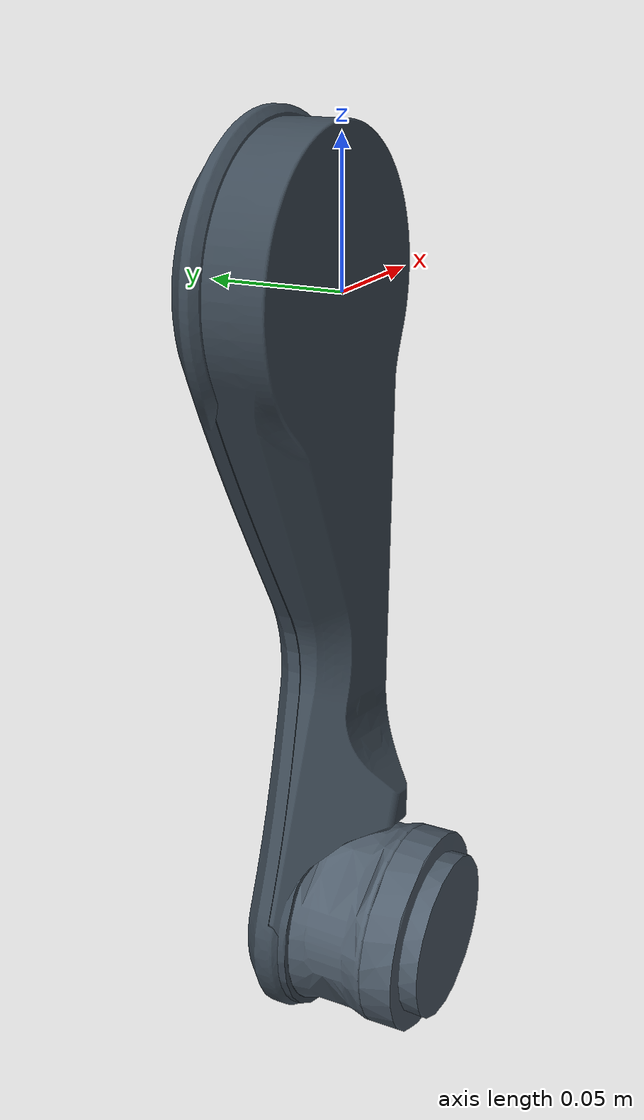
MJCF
<mujoco model="fr_knee">
  <default>
    <default class="visual">
      <geom group="2" type="mesh" contype="0" conaffinity="0"/>
    </default>
    <default class="collision">
      <geom group="3" type="mesh"/>
    </default>
  </default>
  <asset>
    <material name="Material-7011油漆" specular="0.5" shininess="0.25" rgba="0.309804 0.364706 0.419608 1.000000"/>
    <material name="Material-7011油漆.001" specular="0.5" shininess="0.25" rgba="0.309804 0.364706 0.419608 1.000000"/>
    <material name="Material-7024塑胶" specular="0.5" shininess="0.25" rgba="0.239216 0.290196 0.337255 1.000000"/>
    <material name="Material-7024油漆" specular="0.5" shininess="0.25" rgba="0.239216 0.290196 0.337255 1.000000"/>
    <material name="Material-7024油漆.001" specular="0.5" shininess="0.25" rgba="0.239216 0.290196 0.337255 1.000000"/>
    <mesh file="fr_knee_0.obj"/>
    <mesh file="fr_knee_1.obj"/>
    <mesh file="fr_knee_2.obj"/>
    <mesh file="fr_knee_3.obj"/>
    <mesh file="fr_knee_4.obj"/>
  </asset>
  <worldbody>
    <body name="fr_knee">
      <geom mesh="fr_knee_0" material="Material-7011油漆.001" class="visual"/>
      <geom mesh="fr_knee_1" material="Material-7024塑胶" class="visual"/>
      <geom mesh="fr_knee_2" material="Material-7011油漆" class="visual"/>
      <geom mesh="fr_knee_3" material="Material-7024油漆.001" class="visual"/>
      <geom mesh="fr_knee_4" material="Material-7024油漆" class="visual"/>
      <geom mesh="fr_knee_0" class="collision"/>
      <geom mesh="fr_knee_1" class="collision"/>
      <geom mesh="fr_knee_2" class="collision"/>
      <geom mesh="fr_knee_3" class="collision"/>
      <geom mesh="fr_knee_4" class="collision"/>
    </body>
  </worldbody>
</mujoco>
